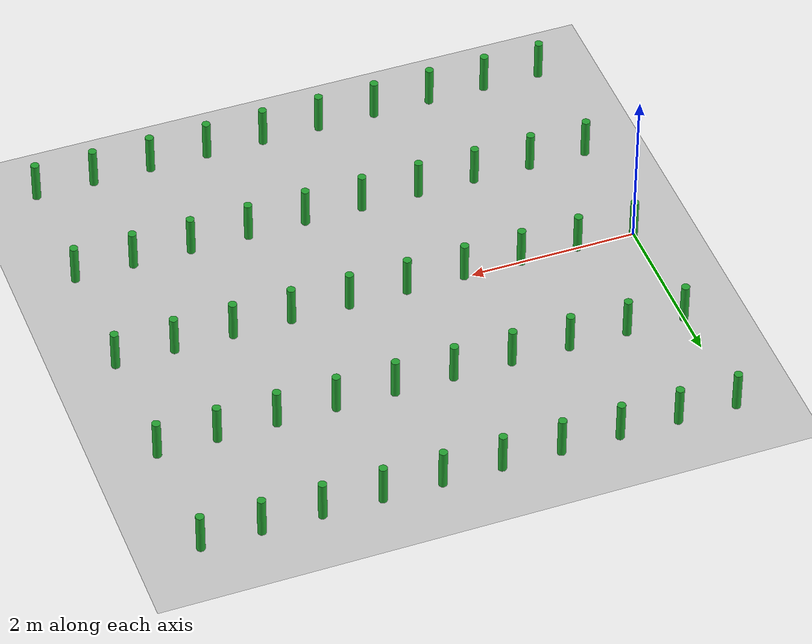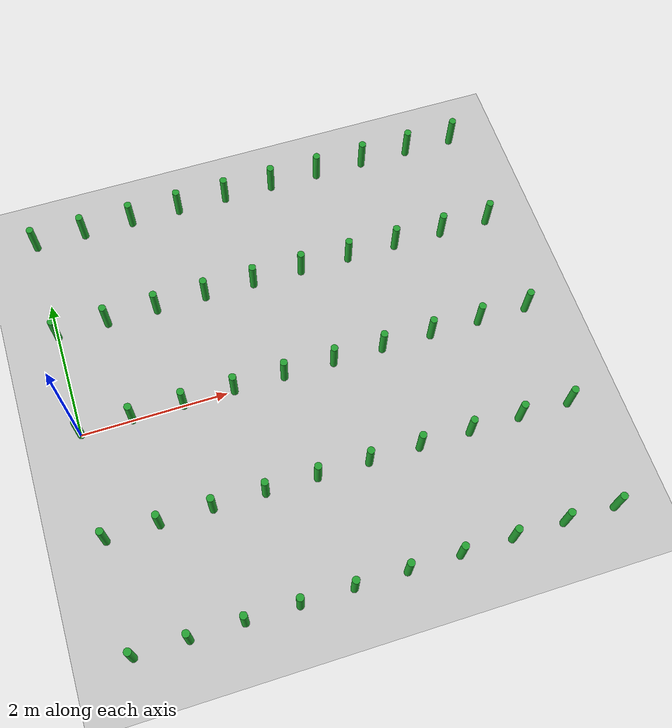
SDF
<?xml version="1.0" ?>
<sdf version="1.5">
  <world name="default">
    <include><uri>model://sun</uri></include>
    <include><uri>model://ground_plane</uri></include>

    <model name="crop_0_0">
      <pose>0.0 -3.0 0.25 0 0 0</pose>
      <static>true</static>
      <link name="link">
        <collision name="collision">
          <geometry><cylinder><radius>0.05</radius><length>0.5</length></cylinder></geometry>
        </collision>
        <visual name="visual">
          <geometry><cylinder><radius>0.05</radius><length>0.5</length></cylinder></geometry>
          <material>
            <script>
              <uri>file://media/materials/scripts/gazebo.material</uri>
              <name>Gazebo/Green</name>
            </script>
          </material>
        </visual>
      </link>
    </model>

    <model name="crop_0_1">
      <pose>0.7 -3.0 0.25 0 0 0</pose>
      <static>true</static>
      <link name="link">
        <collision name="collision">
          <geometry><cylinder><radius>0.05</radius><length>0.5</length></cylinder></geometry>
        </collision>
        <visual name="visual">
          <geometry><cylinder><radius>0.05</radius><length>0.5</length></cylinder></geometry>
          <material>
            <script>
              <uri>file://media/materials/scripts/gazebo.material</uri>
              <name>Gazebo/Green</name>
            </script>
          </material>
        </visual>
      </link>
    </model>

    <model name="crop_0_2">
      <pose>1.4 -3.0 0.25 0 0 0</pose>
      <static>true</static>
      <link name="link">
        <collision name="collision">
          <geometry><cylinder><radius>0.05</radius><length>0.5</length></cylinder></geometry>
        </collision>
        <visual name="visual">
          <geometry><cylinder><radius>0.05</radius><length>0.5</length></cylinder></geometry>
          <material>
            <script>
              <uri>file://media/materials/scripts/gazebo.material</uri>
              <name>Gazebo/Green</name>
            </script>
          </material>
        </visual>
      </link>
    </model>

    <model name="crop_0_3">
      <pose>2.0999999999999996 -3.0 0.25 0 0 0</pose>
      <static>true</static>
      <link name="link">
        <collision name="collision">
          <geometry><cylinder><radius>0.05</radius><length>0.5</length></cylinder></geometry>
        </collision>
        <visual name="visual">
          <geometry><cylinder><radius>0.05</radius><length>0.5</length></cylinder></geometry>
          <material>
            <script>
              <uri>file://media/materials/scripts/gazebo.material</uri>
              <name>Gazebo/Green</name>
            </script>
          </material>
        </visual>
      </link>
    </model>

    <model name="crop_0_4">
      <pose>2.8 -3.0 0.25 0 0 0</pose>
      <static>true</static>
      <link name="link">
        <collision name="collision">
          <geometry><cylinder><radius>0.05</radius><length>0.5</length></cylinder></geometry>
        </collision>
        <visual name="visual">
          <geometry><cylinder><radius>0.05</radius><length>0.5</length></cylinder></geometry>
          <material>
            <script>
              <uri>file://media/materials/scripts/gazebo.material</uri>
              <name>Gazebo/Green</name>
            </script>
          </material>
        </visual>
      </link>
    </model>

    <model name="crop_0_5">
      <pose>3.5 -3.0 0.25 0 0 0</pose>
      <static>true</static>
      <link name="link">
        <collision name="collision">
          <geometry><cylinder><radius>0.05</radius><length>0.5</length></cylinder></geometry>
        </collision>
        <visual name="visual">
          <geometry><cylinder><radius>0.05</radius><length>0.5</length></cylinder></geometry>
          <material>
            <script>
              <uri>file://media/materials/scripts/gazebo.material</uri>
              <name>Gazebo/Green</name>
            </script>
          </material>
        </visual>
      </link>
    </model>

    <model name="crop_0_6">
      <pose>4.199999999999999 -3.0 0.25 0 0 0</pose>
      <static>true</static>
      <link name="link">
        <collision name="collision">
          <geometry><cylinder><radius>0.05</radius><length>0.5</length></cylinder></geometry>
        </collision>
        <visual name="visual">
          <geometry><cylinder><radius>0.05</radius><length>0.5</length></cylinder></geometry>
          <material>
            <script>
              <uri>file://media/materials/scripts/gazebo.material</uri>
              <name>Gazebo/Green</name>
            </script>
          </material>
        </visual>
      </link>
    </model>

    <model name="crop_0_7">
      <pose>4.8999999999999995 -3.0 0.25 0 0 0</pose>
      <static>true</static>
      <link name="link">
        <collision name="collision">
          <geometry><cylinder><radius>0.05</radius><length>0.5</length></cylinder></geometry>
        </collision>
        <visual name="visual">
          <geometry><cylinder><radius>0.05</radius><length>0.5</length></cylinder></geometry>
          <material>
            <script>
              <uri>file://media/materials/scripts/gazebo.material</uri>
              <name>Gazebo/Green</name>
            </script>
          </material>
        </visual>
      </link>
    </model>

    <model name="crop_0_8">
      <pose>5.6 -3.0 0.25 0 0 0</pose>
      <static>true</static>
      <link name="link">
        <collision name="collision">
          <geometry><cylinder><radius>0.05</radius><length>0.5</length></cylinder></geometry>
        </collision>
        <visual name="visual">
          <geometry><cylinder><radius>0.05</radius><length>0.5</length></cylinder></geometry>
          <material>
            <script>
              <uri>file://media/materials/scripts/gazebo.material</uri>
              <name>Gazebo/Green</name>
            </script>
          </material>
        </visual>
      </link>
    </model>

    <model name="crop_0_9">
      <pose>6.3 -3.0 0.25 0 0 0</pose>
      <static>true</static>
      <link name="link">
        <collision name="collision">
          <geometry><cylinder><radius>0.05</radius><length>0.5</length></cylinder></geometry>
        </collision>
        <visual name="visual">
          <geometry><cylinder><radius>0.05</radius><length>0.5</length></cylinder></geometry>
          <material>
            <script>
              <uri>file://media/materials/scripts/gazebo.material</uri>
              <name>Gazebo/Green</name>
            </script>
          </material>
        </visual>
      </link>
    </model>

    <model name="crop_1_0">
      <pose>0.0 -1.5 0.25 0 0 0</pose>
      <static>true</static>
      <link name="link">
        <collision name="collision">
          <geometry><cylinder><radius>0.05</radius><length>0.5</length></cylinder></geometry>
        </collision>
        <visual name="visual">
          <geometry><cylinder><radius>0.05</radius><length>0.5</length></cylinder></geometry>
          <material>
            <script>
              <uri>file://media/materials/scripts/gazebo.material</uri>
              <name>Gazebo/Green</name>
            </script>
          </material>
        </visual>
      </link>
    </model>

    <model name="crop_1_1">
      <pose>0.7 -1.5 0.25 0 0 0</pose>
      <static>true</static>
      <link name="link">
        <collision name="collision">
          <geometry><cylinder><radius>0.05</radius><length>0.5</length></cylinder></geometry>
        </collision>
        <visual name="visual">
          <geometry><cylinder><radius>0.05</radius><length>0.5</length></cylinder></geometry>
          <material>
            <script>
              <uri>file://media/materials/scripts/gazebo.material</uri>
              <name>Gazebo/Green</name>
            </script>
          </material>
        </visual>
      </link>
    </model>

    <model name="crop_1_2">
      <pose>1.4 -1.5 0.25 0 0 0</pose>
      <static>true</static>
      <link name="link">
        <collision name="collision">
          <geometry><cylinder><radius>0.05</radius><length>0.5</length></cylinder></geometry>
        </collision>
        <visual name="visual">
          <geometry><cylinder><radius>0.05</radius><length>0.5</length></cylinder></geometry>
          <material>
            <script>
              <uri>file://media/materials/scripts/gazebo.material</uri>
              <name>Gazebo/Green</name>
            </script>
          </material>
        </visual>
      </link>
    </model>

    <model name="crop_1_3">
      <pose>2.0999999999999996 -1.5 0.25 0 0 0</pose>
      <static>true</static>
      <link name="link">
        <collision name="collision">
          <geometry><cylinder><radius>0.05</radius><length>0.5</length></cylinder></geometry>
        </collision>
        <visual name="visual">
          <geometry><cylinder><radius>0.05</radius><length>0.5</length></cylinder></geometry>
          <material>
            <script>
              <uri>file://media/materials/scripts/gazebo.material</uri>
              <name>Gazebo/Green</name>
            </script>
          </material>
        </visual>
      </link>
    </model>

    <model name="crop_1_4">
      <pose>2.8 -1.5 0.25 0 0 0</pose>
      <static>true</static>
      <link name="link">
        <collision name="collision">
          <geometry><cylinder><radius>0.05</radius><length>0.5</length></cylinder></geometry>
        </collision>
        <visual name="visual">
          <geometry><cylinder><radius>0.05</radius><length>0.5</length></cylinder></geometry>
          <material>
            <script>
              <uri>file://media/materials/scripts/gazebo.material</uri>
              <name>Gazebo/Green</name>
            </script>
          </material>
        </visual>
      </link>
    </model>

    <model name="crop_1_5">
      <pose>3.5 -1.5 0.25 0 0 0</pose>
      <static>true</static>
      <link name="link">
        <collision name="collision">
          <geometry><cylinder><radius>0.05</radius><length>0.5</length></cylinder></geometry>
        </collision>
        <visual name="visual">
          <geometry><cylinder><radius>0.05</radius><length>0.5</length></cylinder></geometry>
          <material>
            <script>
              <uri>file://media/materials/scripts/gazebo.material</uri>
              <name>Gazebo/Green</name>
            </script>
          </material>
        </visual>
      </link>
    </model>

    <model name="crop_1_6">
      <pose>4.199999999999999 -1.5 0.25 0 0 0</pose>
      <static>true</static>
      <link name="link">
        <collision name="collision">
          <geometry><cylinder><radius>0.05</radius><length>0.5</length></cylinder></geometry>
        </collision>
        <visual name="visual">
          <geometry><cylinder><radius>0.05</radius><length>0.5</length></cylinder></geometry>
          <material>
            <script>
              <uri>file://media/materials/scripts/gazebo.material</uri>
              <name>Gazebo/Green</name>
            </script>
          </material>
        </visual>
      </link>
    </model>

    <model name="crop_1_7">
      <pose>4.8999999999999995 -1.5 0.25 0 0 0</pose>
      <static>true</static>
      <link name="link">
        <collision name="collision">
          <geometry><cylinder><radius>0.05</radius><length>0.5</length></cylinder></geometry>
        </collision>
        <visual name="visual">
          <geometry><cylinder><radius>0.05</radius><length>0.5</length></cylinder></geometry>
          <material>
            <script>
              <uri>file://media/materials/scripts/gazebo.material</uri>
              <name>Gazebo/Green</name>
            </script>
          </material>
        </visual>
      </link>
    </model>

    <model name="crop_1_8">
      <pose>5.6 -1.5 0.25 0 0 0</pose>
      <static>true</static>
      <link name="link">
        <collision name="collision">
          <geometry><cylinder><radius>0.05</radius><length>0.5</length></cylinder></geometry>
        </collision>
        <visual name="visual">
          <geometry><cylinder><radius>0.05</radius><length>0.5</length></cylinder></geometry>
          <material>
            <script>
              <uri>file://media/materials/scripts/gazebo.material</uri>
              <name>Gazebo/Green</name>
            </script>
          </material>
        </visual>
      </link>
    </model>

    <model name="crop_1_9">
      <pose>6.3 -1.5 0.25 0 0 0</pose>
      <static>true</static>
      <link name="link">
        <collision name="collision">
          <geometry><cylinder><radius>0.05</radius><length>0.5</length></cylinder></geometry>
        </collision>
        <visual name="visual">
          <geometry><cylinder><radius>0.05</radius><length>0.5</length></cylinder></geometry>
          <material>
            <script>
              <uri>file://media/materials/scripts/gazebo.material</uri>
              <name>Gazebo/Green</name>
            </script>
          </material>
        </visual>
      </link>
    </model>

    <model name="crop_2_0">
      <pose>0.0 0.0 0.25 0 0 0</pose>
      <static>true</static>
      <link name="link">
        <collision name="collision">
          <geometry><cylinder><radius>0.05</radius><length>0.5</length></cylinder></geometry>
        </collision>
        <visual name="visual">
          <geometry><cylinder><radius>0.05</radius><length>0.5</length></cylinder></geometry>
          <material>
            <script>
              <uri>file://media/materials/scripts/gazebo.material</uri>
              <name>Gazebo/Green</name>
            </script>
          </material>
        </visual>
      </link>
    </model>

    <model name="crop_2_1">
      <pose>0.7 0.0 0.25 0 0 0</pose>
      <static>true</static>
      <link name="link">
        <collision name="collision">
          <geometry><cylinder><radius>0.05</radius><length>0.5</length></cylinder></geometry>
        </collision>
        <visual name="visual">
          <geometry><cylinder><radius>0.05</radius><length>0.5</length></cylinder></geometry>
          <material>
            <script>
              <uri>file://media/materials/scripts/gazebo.material</uri>
              <name>Gazebo/Green</name>
            </script>
          </material>
        </visual>
      </link>
    </model>

    <model name="crop_2_2">
      <pose>1.4 0.0 0.25 0 0 0</pose>
      <static>true</static>
      <link name="link">
        <collision name="collision">
          <geometry><cylinder><radius>0.05</radius><length>0.5</length></cylinder></geometry>
        </collision>
        <visual name="visual">
          <geometry><cylinder><radius>0.05</radius><length>0.5</length></cylinder></geometry>
          <material>
            <script>
              <uri>file://media/materials/scripts/gazebo.material</uri>
              <name>Gazebo/Green</name>
            </script>
          </material>
        </visual>
      </link>
    </model>

    <model name="crop_2_3">
      <pose>2.0999999999999996 0.0 0.25 0 0 0</pose>
      <static>true</static>
      <link name="link">
        <collision name="collision">
          <geometry><cylinder><radius>0.05</radius><length>0.5</length></cylinder></geometry>
        </collision>
        <visual name="visual">
          <geometry><cylinder><radius>0.05</radius><length>0.5</length></cylinder></geometry>
          <material>
            <script>
              <uri>file://media/materials/scripts/gazebo.material</uri>
              <name>Gazebo/Green</name>
            </script>
          </material>
        </visual>
      </link>
    </model>

    <model name="crop_2_4">
      <pose>2.8 0.0 0.25 0 0 0</pose>
      <static>true</static>
      <link name="link">
        <collision name="collision">
          <geometry><cylinder><radius>0.05</radius><length>0.5</length></cylinder></geometry>
        </collision>
        <visual name="visual">
          <geometry><cylinder><radius>0.05</radius><length>0.5</length></cylinder></geometry>
          <material>
            <script>
              <uri>file://media/materials/scripts/gazebo.material</uri>
              <name>Gazebo/Green</name>
            </script>
          </material>
        </visual>
      </link>
    </model>

    <model name="crop_2_5">
      <pose>3.5 0.0 0.25 0 0 0</pose>
      <static>true</static>
      <link name="link">
        <collision name="collision">
          <geometry><cylinder><radius>0.05</radius><length>0.5</length></cylinder></geometry>
        </collision>
        <visual name="visual">
          <geometry><cylinder><radius>0.05</radius><length>0.5</length></cylinder></geometry>
          <material>
            <script>
              <uri>file://media/materials/scripts/gazebo.material</uri>
              <name>Gazebo/Green</name>
            </script>
          </material>
        </visual>
      </link>
    </model>

    <model name="crop_2_6">
      <pose>4.199999999999999 0.0 0.25 0 0 0</pose>
      <static>true</static>
      <link name="link">
        <collision name="collision">
          <geometry><cylinder><radius>0.05</radius><length>0.5</length></cylinder></geometry>
        </collision>
        <visual name="visual">
          <geometry><cylinder><radius>0.05</radius><length>0.5</length></cylinder></geometry>
          <material>
            <script>
              <uri>file://media/materials/scripts/gazebo.material</uri>
              <name>Gazebo/Green</name>
            </script>
          </material>
        </visual>
      </link>
    </model>

    <model name="crop_2_7">
      <pose>4.8999999999999995 0.0 0.25 0 0 0</pose>
      <static>true</static>
      <link name="link">
        <collision name="collision">
          <geometry><cylinder><radius>0.05</radius><length>0.5</length></cylinder></geometry>
        </collision>
        <visual name="visual">
          <geometry><cylinder><radius>0.05</radius><length>0.5</length></cylinder></geometry>
          <material>
            <script>
              <uri>file://media/materials/scripts/gazebo.material</uri>
              <name>Gazebo/Green</name>
            </script>
          </material>
        </visual>
      </link>
    </model>

    <model name="crop_2_8">
      <pose>5.6 0.0 0.25 0 0 0</pose>
      <static>true</static>
      <link name="link">
        <collision name="collision">
          <geometry><cylinder><radius>0.05</radius><length>0.5</length></cylinder></geometry>
        </collision>
        <visual name="visual">
          <geometry><cylinder><radius>0.05</radius><length>0.5</length></cylinder></geometry>
          <material>
            <script>
              <uri>file://media/materials/scripts/gazebo.material</uri>
              <name>Gazebo/Green</name>
            </script>
          </material>
        </visual>
      </link>
    </model>

    <model name="crop_2_9">
      <pose>6.3 0.0 0.25 0 0 0</pose>
      <static>true</static>
      <link name="link">
        <collision name="collision">
          <geometry><cylinder><radius>0.05</radius><length>0.5</length></cylinder></geometry>
        </collision>
        <visual name="visual">
          <geometry><cylinder><radius>0.05</radius><length>0.5</length></cylinder></geometry>
          <material>
            <script>
              <uri>file://media/materials/scripts/gazebo.material</uri>
              <name>Gazebo/Green</name>
            </script>
          </material>
        </visual>
      </link>
    </model>

    <model name="crop_3_0">
      <pose>0.0 1.5 0.25 0 0 0</pose>
      <static>true</static>
      <link name="link">
        <collision name="collision">
          <geometry><cylinder><radius>0.05</radius><length>0.5</length></cylinder></geometry>
        </collision>
        <visual name="visual">
          <geometry><cylinder><radius>0.05</radius><length>0.5</length></cylinder></geometry>
          <material>
            <script>
              <uri>file://media/materials/scripts/gazebo.material</uri>
              <name>Gazebo/Green</name>
            </script>
          </material>
        </visual>
      </link>
    </model>

    <model name="crop_3_1">
      <pose>0.7 1.5 0.25 0 0 0</pose>
      <static>true</static>
      <link name="link">
        <collision name="collision">
          <geometry><cylinder><radius>0.05</radius><length>0.5</length></cylinder></geometry>
        </collision>
        <visual name="visual">
          <geometry><cylinder><radius>0.05</radius><length>0.5</length></cylinder></geometry>
          <material>
            <script>
              <uri>file://media/materials/scripts/gazebo.material</uri>
              <name>Gazebo/Green</name>
            </script>
          </material>
        </visual>
      </link>
    </model>

    <model name="crop_3_2">
      <pose>1.4 1.5 0.25 0 0 0</pose>
      <static>true</static>
      <link name="link">
        <collision name="collision">
          <geometry><cylinder><radius>0.05</radius><length>0.5</length></cylinder></geometry>
        </collision>
        <visual name="visual">
          <geometry><cylinder><radius>0.05</radius><length>0.5</length></cylinder></geometry>
          <material>
            <script>
              <uri>file://media/materials/scripts/gazebo.material</uri>
              <name>Gazebo/Green</name>
            </script>
          </material>
        </visual>
      </link>
    </model>

    <model name="crop_3_3">
      <pose>2.0999999999999996 1.5 0.25 0 0 0</pose>
      <static>true</static>
      <link name="link">
        <collision name="collision">
          <geometry><cylinder><radius>0.05</radius><length>0.5</length></cylinder></geometry>
        </collision>
        <visual name="visual">
          <geometry><cylinder><radius>0.05</radius><length>0.5</length></cylinder></geometry>
          <material>
            <script>
              <uri>file://media/materials/scripts/gazebo.material</uri>
              <name>Gazebo/Green</name>
            </script>
          </material>
        </visual>
      </link>
    </model>

    <model name="crop_3_4">
      <pose>2.8 1.5 0.25 0 0 0</pose>
      <static>true</static>
      <link name="link">
        <collision name="collision">
          <geometry><cylinder><radius>0.05</radius><length>0.5</length></cylinder></geometry>
        </collision>
        <visual name="visual">
          <geometry><cylinder><radius>0.05</radius><length>0.5</length></cylinder></geometry>
          <material>
            <script>
              <uri>file://media/materials/scripts/gazebo.material</uri>
              <name>Gazebo/Green</name>
            </script>
          </material>
        </visual>
      </link>
    </model>

    <model name="crop_3_5">
      <pose>3.5 1.5 0.25 0 0 0</pose>
      <static>true</static>
      <link name="link">
        <collision name="collision">
          <geometry><cylinder><radius>0.05</radius><length>0.5</length></cylinder></geometry>
        </collision>
        <visual name="visual">
          <geometry><cylinder><radius>0.05</radius><length>0.5</length></cylinder></geometry>
          <material>
            <script>
              <uri>file://media/materials/scripts/gazebo.material</uri>
              <name>Gazebo/Green</name>
            </script>
          </material>
        </visual>
      </link>
    </model>

    <model name="crop_3_6">
      <pose>4.199999999999999 1.5 0.25 0 0 0</pose>
      <static>true</static>
      <link name="link">
        <collision name="collision">
          <geometry><cylinder><radius>0.05</radius><length>0.5</length></cylinder></geometry>
        </collision>
        <visual name="visual">
          <geometry><cylinder><radius>0.05</radius><length>0.5</length></cylinder></geometry>
          <material>
            <script>
              <uri>file://media/materials/scripts/gazebo.material</uri>
              <name>Gazebo/Green</name>
            </script>
          </material>
        </visual>
      </link>
    </model>

    <model name="crop_3_7">
      <pose>4.8999999999999995 1.5 0.25 0 0 0</pose>
      <static>true</static>
      <link name="link">
        <collision name="collision">
          <geometry><cylinder><radius>0.05</radius><length>0.5</length></cylinder></geometry>
        </collision>
        <visual name="visual">
          <geometry><cylinder><radius>0.05</radius><length>0.5</length></cylinder></geometry>
          <material>
            <script>
              <uri>file://media/materials/scripts/gazebo.material</uri>
              <name>Gazebo/Green</name>
            </script>
          </material>
        </visual>
      </link>
    </model>

    <model name="crop_3_8">
      <pose>5.6 1.5 0.25 0 0 0</pose>
      <static>true</static>
      <link name="link">
        <collision name="collision">
          <geometry><cylinder><radius>0.05</radius><length>0.5</length></cylinder></geometry>
        </collision>
        <visual name="visual">
          <geometry><cylinder><radius>0.05</radius><length>0.5</length></cylinder></geometry>
          <material>
            <script>
              <uri>file://media/materials/scripts/gazebo.material</uri>
              <name>Gazebo/Green</name>
            </script>
          </material>
        </visual>
      </link>
    </model>

    <model name="crop_3_9">
      <pose>6.3 1.5 0.25 0 0 0</pose>
      <static>true</static>
      <link name="link">
        <collision name="collision">
          <geometry><cylinder><radius>0.05</radius><length>0.5</length></cylinder></geometry>
        </collision>
        <visual name="visual">
          <geometry><cylinder><radius>0.05</radius><length>0.5</length></cylinder></geometry>
          <material>
            <script>
              <uri>file://media/materials/scripts/gazebo.material</uri>
              <name>Gazebo/Green</name>
            </script>
          </material>
        </visual>
      </link>
    </model>

    <model name="crop_4_0">
      <pose>0.0 3.0 0.25 0 0 0</pose>
      <static>true</static>
      <link name="link">
        <collision name="collision">
          <geometry><cylinder><radius>0.05</radius><length>0.5</length></cylinder></geometry>
        </collision>
        <visual name="visual">
          <geometry><cylinder><radius>0.05</radius><length>0.5</length></cylinder></geometry>
          <material>
            <script>
              <uri>file://media/materials/scripts/gazebo.material</uri>
              <name>Gazebo/Green</name>
            </script>
          </material>
        </visual>
      </link>
    </model>

    <model name="crop_4_1">
      <pose>0.7 3.0 0.25 0 0 0</pose>
      <static>true</static>
      <link name="link">
        <collision name="collision">
          <geometry><cylinder><radius>0.05</radius><length>0.5</length></cylinder></geometry>
        </collision>
        <visual name="visual">
          <geometry><cylinder><radius>0.05</radius><length>0.5</length></cylinder></geometry>
          <material>
            <script>
              <uri>file://media/materials/scripts/gazebo.material</uri>
              <name>Gazebo/Green</name>
            </script>
          </material>
        </visual>
      </link>
    </model>

    <model name="crop_4_2">
      <pose>1.4 3.0 0.25 0 0 0</pose>
      <static>true</static>
      <link name="link">
        <collision name="collision">
          <geometry><cylinder><radius>0.05</radius><length>0.5</length></cylinder></geometry>
        </collision>
        <visual name="visual">
          <geometry><cylinder><radius>0.05</radius><length>0.5</length></cylinder></geometry>
          <material>
            <script>
              <uri>file://media/materials/scripts/gazebo.material</uri>
              <name>Gazebo/Green</name>
            </script>
          </material>
        </visual>
      </link>
    </model>

    <model name="crop_4_3">
      <pose>2.0999999999999996 3.0 0.25 0 0 0</pose>
      <static>true</static>
      <link name="link">
        <collision name="collision">
          <geometry><cylinder><radius>0.05</radius><length>0.5</length></cylinder></geometry>
        </collision>
        <visual name="visual">
          <geometry><cylinder><radius>0.05</radius><length>0.5</length></cylinder></geometry>
          <material>
            <script>
              <uri>file://media/materials/scripts/gazebo.material</uri>
              <name>Gazebo/Green</name>
            </script>
          </material>
        </visual>
      </link>
    </model>

    <model name="crop_4_4">
      <pose>2.8 3.0 0.25 0 0 0</pose>
      <static>true</static>
      <link name="link">
        <collision name="collision">
          <geometry><cylinder><radius>0.05</radius><length>0.5</length></cylinder></geometry>
        </collision>
        <visual name="visual">
          <geometry><cylinder><radius>0.05</radius><length>0.5</length></cylinder></geometry>
          <material>
            <script>
              <uri>file://media/materials/scripts/gazebo.material</uri>
              <name>Gazebo/Green</name>
            </script>
          </material>
        </visual>
      </link>
    </model>

    <model name="crop_4_5">
      <pose>3.5 3.0 0.25 0 0 0</pose>
      <static>true</static>
      <link name="link">
        <collision name="collision">
          <geometry><cylinder><radius>0.05</radius><length>0.5</length></cylinder></geometry>
        </collision>
        <visual name="visual">
          <geometry><cylinder><radius>0.05</radius><length>0.5</length></cylinder></geometry>
          <material>
            <script>
              <uri>file://media/materials/scripts/gazebo.material</uri>
              <name>Gazebo/Green</name>
            </script>
          </material>
        </visual>
      </link>
    </model>

    <model name="crop_4_6">
      <pose>4.199999999999999 3.0 0.25 0 0 0</pose>
      <static>true</static>
      <link name="link">
        <collision name="collision">
          <geometry><cylinder><radius>0.05</radius><length>0.5</length></cylinder></geometry>
        </collision>
        <visual name="visual">
          <geometry><cylinder><radius>0.05</radius><length>0.5</length></cylinder></geometry>
          <material>
            <script>
              <uri>file://media/materials/scripts/gazebo.material</uri>
              <name>Gazebo/Green</name>
            </script>
          </material>
        </visual>
      </link>
    </model>

    <model name="crop_4_7">
      <pose>4.8999999999999995 3.0 0.25 0 0 0</pose>
      <static>true</static>
      <link name="link">
        <collision name="collision">
          <geometry><cylinder><radius>0.05</radius><length>0.5</length></cylinder></geometry>
        </collision>
        <visual name="visual">
          <geometry><cylinder><radius>0.05</radius><length>0.5</length></cylinder></geometry>
          <material>
            <script>
              <uri>file://media/materials/scripts/gazebo.material</uri>
              <name>Gazebo/Green</name>
            </script>
          </material>
        </visual>
      </link>
    </model>

    <model name="crop_4_8">
      <pose>5.6 3.0 0.25 0 0 0</pose>
      <static>true</static>
      <link name="link">
        <collision name="collision">
          <geometry><cylinder><radius>0.05</radius><length>0.5</length></cylinder></geometry>
        </collision>
        <visual name="visual">
          <geometry><cylinder><radius>0.05</radius><length>0.5</length></cylinder></geometry>
          <material>
            <script>
              <uri>file://media/materials/scripts/gazebo.material</uri>
              <name>Gazebo/Green</name>
            </script>
          </material>
        </visual>
      </link>
    </model>

    <model name="crop_4_9">
      <pose>6.3 3.0 0.25 0 0 0</pose>
      <static>true</static>
      <link name="link">
        <collision name="collision">
          <geometry><cylinder><radius>0.05</radius><length>0.5</length></cylinder></geometry>
        </collision>
        <visual name="visual">
          <geometry><cylinder><radius>0.05</radius><length>0.5</length></cylinder></geometry>
          <material>
            <script>
              <uri>file://media/materials/scripts/gazebo.material</uri>
              <name>Gazebo/Green</name>
            </script>
          </material>
        </visual>
      </link>
    </model>
  </world>
</sdf>
